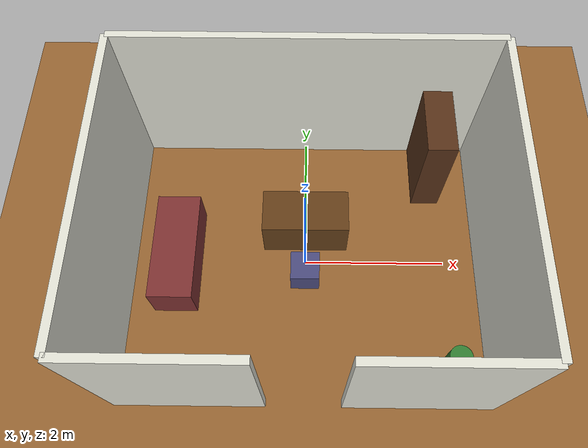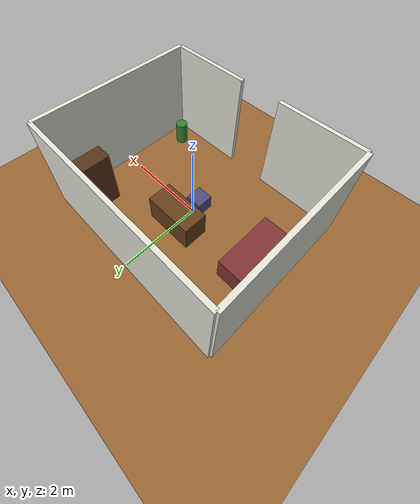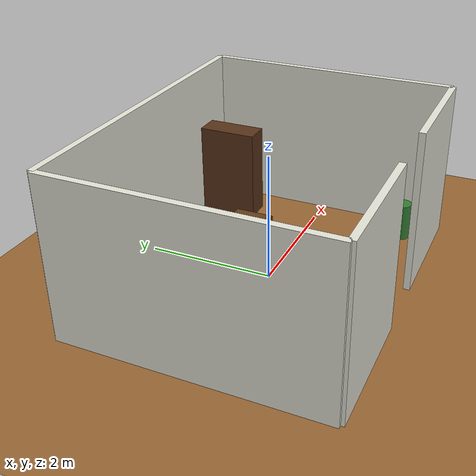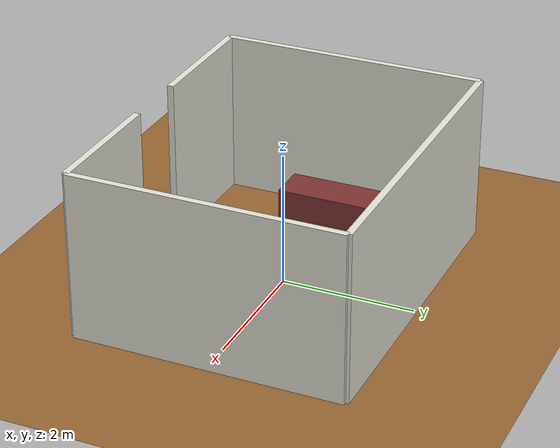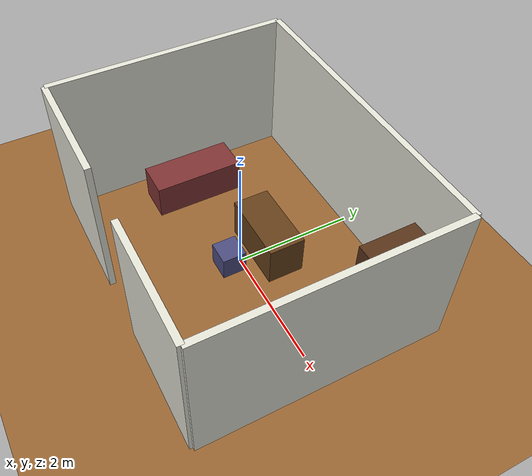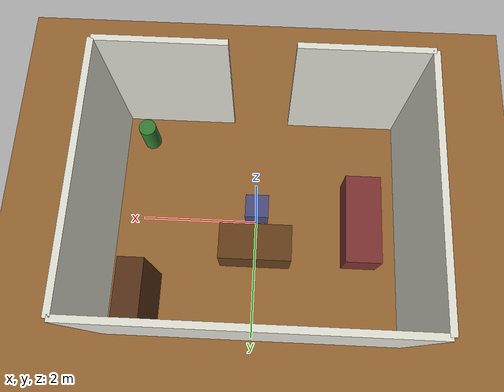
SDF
<?xml version="1.0" ?>
<sdf version="1.8">
  <world name="simple_room">

    <!-- Physics -->
    <physics name="1ms" type="ignored">
      <max_step_size>0.001</max_step_size>
      <real_time_factor>1.0</real_time_factor>
    </physics>

    <!-- Plugins -->
    <plugin filename="gz-sim-physics-system" name="gz::sim::systems::Physics"/>
    <plugin filename="gz-sim-user-commands-system" name="gz::sim::systems::UserCommands"/>
    <plugin filename="gz-sim-scene-broadcaster-system" name="gz::sim::systems::SceneBroadcaster"/>
    <plugin filename="gz-sim-sensors-system" name="gz::sim::systems::Sensors">
      <render_engine>ogre2</render_engine>
    </plugin>
    <plugin filename="gz-sim-imu-system" name="gz::sim::systems::Imu"/>
    <plugin filename="gz-sim-contact-system" name="gz::sim::systems::Contact"/>

    <!-- Lighting -->
    <light type="directional" name="sun">
      <cast_shadows>true</cast_shadows>
      <pose>0 0 10 0 0 0</pose>
      <diffuse>0.8 0.8 0.8 1</diffuse>
      <specular>0.2 0.2 0.2 1</specular>
      <direction>-0.5 0.1 -0.9</direction>
    </light>

    <!-- Ground (나무 바닥) -->
    <model name="ground_plane">
      <static>true</static>
      <link name="link">
        <collision name="collision">
          <geometry>
            <plane>
              <normal>0 0 1</normal>
              <size>100 100</size>
            </plane>
          </geometry>
        </collision>
        <visual name="visual">
          <geometry>
            <plane>
              <normal>0 0 1</normal>
              <size>100 100</size>
            </plane>
          </geometry>
          <material>
            <ambient>0.6 0.4 0.2 1</ambient>
            <diffuse>0.6 0.4 0.2 1</diffuse>
          </material>
        </visual>
      </link>
    </model>

    <!-- 북쪽 벽 -->
    <model name="wall_north">
      <static>true</static>
      <pose>0 2 1.25 0 0 0</pose>
      <link name="link">
        <collision name="collision">
          <geometry><box><size>5 0.1 2.5</size></box></geometry>
        </collision>
        <visual name="visual">
          <geometry><box><size>5 0.1 2.5</size></box></geometry>
          <material>
            <ambient>0.9 0.9 0.85 1</ambient>
            <diffuse>0.9 0.9 0.85 1</diffuse>
          </material>
        </visual>
      </link>
    </model>

    <!-- 남쪽 벽 (문 있음 - 두 부분) -->
    <model name="wall_south_left">
      <static>true</static>
      <pose>-1.5 -2 1.25 0 0 0</pose>
      <link name="link">
        <collision name="collision">
          <geometry><box><size>2 0.1 2.5</size></box></geometry>
        </collision>
        <visual name="visual">
          <geometry><box><size>2 0.1 2.5</size></box></geometry>
          <material>
            <ambient>0.9 0.9 0.85 1</ambient>
            <diffuse>0.9 0.9 0.85 1</diffuse>
          </material>
        </visual>
      </link>
    </model>

    <model name="wall_south_right">
      <static>true</static>
      <pose>1.5 -2 1.25 0 0 0</pose>
      <link name="link">
        <collision name="collision">
          <geometry><box><size>2 0.1 2.5</size></box></geometry>
        </collision>
        <visual name="visual">
          <geometry><box><size>2 0.1 2.5</size></box></geometry>
          <material>
            <ambient>0.9 0.9 0.85 1</ambient>
            <diffuse>0.9 0.9 0.85 1</diffuse>
          </material>
        </visual>
      </link>
    </model>

    <!-- 동쪽 벽 -->
    <model name="wall_east">
      <static>true</static>
      <pose>2.5 0 1.25 0 0 0</pose>
      <link name="link">
        <collision name="collision">
          <geometry><box><size>0.1 4 2.5</size></box></geometry>
        </collision>
        <visual name="visual">
          <geometry><box><size>0.1 4 2.5</size></box></geometry>
          <material>
            <ambient>0.9 0.9 0.85 1</ambient>
            <diffuse>0.9 0.9 0.85 1</diffuse>
          </material>
        </visual>
      </link>
    </model>

    <!-- 서쪽 벽 -->
    <model name="wall_west">
      <static>true</static>
      <pose>-2.5 0 1.25 0 0 0</pose>
      <link name="link">
        <collision name="collision">
          <geometry><box><size>0.1 4 2.5</size></box></geometry>
        </collision>
        <visual name="visual">
          <geometry><box><size>0.1 4 2.5</size></box></geometry>
          <material>
            <ambient>0.9 0.9 0.85 1</ambient>
            <diffuse>0.9 0.9 0.85 1</diffuse>
          </material>
        </visual>
      </link>
    </model>

    <!-- 가구 -->

    <!-- 테이블 -->
    <model name="table">
      <static>true</static>
      <pose>0 0.5 0.35 0 0 0</pose>
      <link name="link">
        <collision name="collision">
          <geometry><box><size>1.2 0.6 0.7</size></box></geometry>
        </collision>
        <visual name="visual">
          <geometry><box><size>1.2 0.6 0.7</size></box></geometry>
          <material>
            <ambient>0.4 0.25 0.1 1</ambient>
            <diffuse>0.4 0.25 0.1 1</diffuse>
          </material>
        </visual>
      </link>
    </model>

    <!-- 의자 1 -->
    <model name="chair_1">
      <static>true</static>
      <pose>0 -0.2 0.2 0 0 0</pose>
      <link name="link">
        <collision name="collision">
          <geometry><box><size>0.4 0.4 0.4</size></box></geometry>
        </collision>
        <visual name="visual">
          <geometry><box><size>0.4 0.4 0.4</size></box></geometry>
          <material>
            <ambient>0.3 0.3 0.5 1</ambient>
            <diffuse>0.3 0.3 0.5 1</diffuse>
          </material>
        </visual>
      </link>
    </model>

    <!-- 소파 -->
    <model name="sofa">
      <static>true</static>
      <pose>-1.8 0 0.3 0 0 1.57</pose>
      <link name="link">
        <collision name="collision">
          <geometry><box><size>1.5 0.6 0.6</size></box></geometry>
        </collision>
        <visual name="visual">
          <geometry><box><size>1.5 0.6 0.6</size></box></geometry>
          <material>
            <ambient>0.5 0.2 0.2 1</ambient>
            <diffuse>0.5 0.2 0.2 1</diffuse>
          </material>
        </visual>
      </link>
    </model>

    <!-- 책장 -->
    <model name="bookshelf">
      <static>true</static>
      <pose>1.8 1.5 0.75 0 0 0</pose>
      <link name="link">
        <collision name="collision">
          <geometry><box><size>0.4 1.0 1.5</size></box></geometry>
        </collision>
        <visual name="visual">
          <geometry><box><size>0.4 1.0 1.5</size></box></geometry>
          <material>
            <ambient>0.35 0.2 0.1 1</ambient>
            <diffuse>0.35 0.2 0.1 1</diffuse>
          </material>
        </visual>
      </link>
    </model>

    <!-- 화분 -->
    <model name="plant">
      <static>true</static>
      <pose>2.0 -1.5 0.3 0 0 0</pose>
      <link name="link">
        <collision name="collision">
          <geometry><cylinder><radius>0.15</radius><length>0.6</length></cylinder></geometry>
        </collision>
        <visual name="visual">
          <geometry><cylinder><radius>0.15</radius><length>0.6</length></cylinder></geometry>
          <material>
            <ambient>0.2 0.5 0.2 1</ambient>
            <diffuse>0.2 0.5 0.2 1</diffuse>
          </material>
        </visual>
      </link>
    </model>

  </world>
</sdf>
